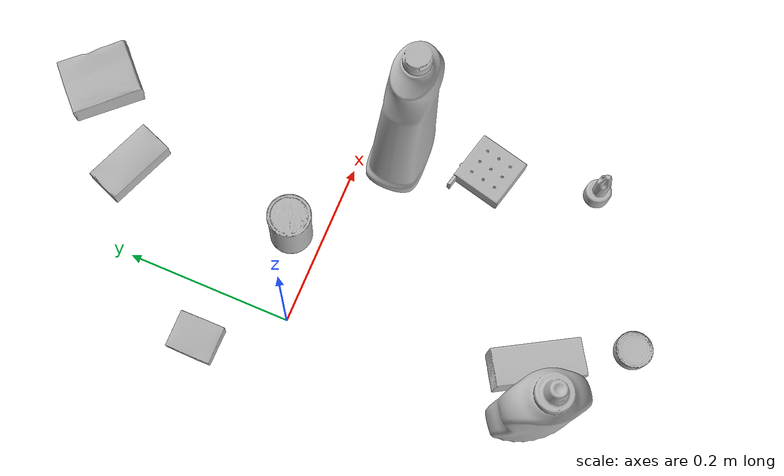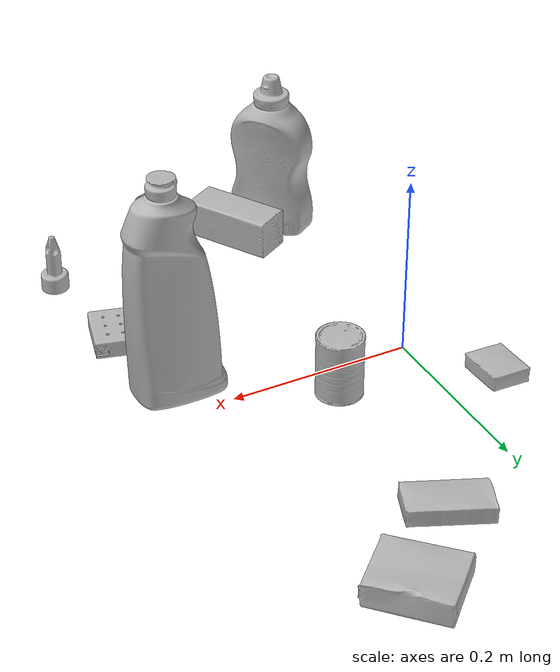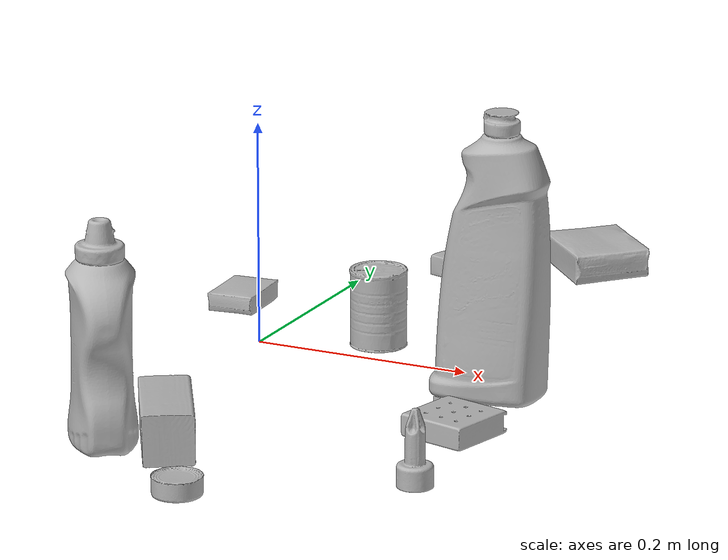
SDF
<sdf version="1.4">
  <world name="default">
    <light name="light1" type="point">
      <pose>0 0 1 0 0 0</pose>
      <diffuse>3 3 3 1</diffuse>
      <specular>3 3 3 1</specular>
    </light>
    <light name="light2" type="point">
      <pose>0 0.5 2 0 0 0</pose>
      <diffuse>1 1 1 1</diffuse>
      <specular>1 1 1 1</specular>
    </light>
    <light name="light3" type="point">
      <pose>0 0.5 2 0 0 0</pose>
      <diffuse>3 3 3 1</diffuse>
      <specular>3 3 3 1</specular>
    </light>
    <scene>
      <ambient>0.7 0.7 0.7</ambient>
    </scene>
    <model name="bottle1">
      <link name="link_bottle1">
        <collision name="default">
          <geometry>
            <mesh>
              <uri>model://mustard_bottle/collision_meshes/collision.obj</uri>
              <scale>1.0 1.0 1.0</scale>
            </mesh>
          </geometry>
          <surface>
            <friction>
              <ode>
                <mu>0.5</mu>
                <mu2>0.5</mu2>
              </ode>
            </friction>
          <contact>
        <ode>
            <max_vel>0</max_vel>
            <min_depth>0.0001</min_depth>
            <kp>1e8</kp>
        </ode>
    </contact></surface>
        </collision>
        <visual name="default">
          <geometry>
            <mesh>
              <uri>model://mustard_bottle/visual_meshes/visual.dae</uri>
              <scale>1.0 1.0 1.0</scale>
            </mesh>
          </geometry>
        </visual>
        <inertial>
          <mass>0.9814921021461487</mass>
          <pose>0.000503245391882956 -0.00015647400869056582 -0.0174757968634367 0.00041823298570721707 0.000946579165099878 0.024853733541460008</pose>
          <inertia>
            <ixx>0.0027254699</ixx>
            <iyy>0.0023913688</iyy>
            <izz>0.0007182988</izz>
            <ixy>0</ixy>
            <ixz>0</ixz>
            <iyz>0</iyz>
          </inertia>
        </inertial>
      </link>
      <pose>0.0052968286909163 -0.2936975359916687 0.09615200012922287 1.5251529174242992e-05 1.6738384253214413e-05 0.5952485585294877</pose>
    </model>
    <model name="bottle2">
      <link name="link_bottle2">
        <collision name="default">
          <geometry>
            <mesh>
              <uri>model://bleach_cleanser/collision_meshes/collision.obj</uri>
              <scale>1.0 1.0 1.0</scale>
            </mesh>
          </geometry>
          <surface>
            <friction>
              <ode>
                <mu>0.5</mu>
                <mu2>0.5</mu2>
              </ode>
            </friction>
          <contact>
        <ode>
            <max_vel>0</max_vel>
            <min_depth>0.0001</min_depth>
            <kp>1e8</kp>
        </ode>
    </contact></surface>
        </collision>
        <visual name="default">
          <geometry>
            <mesh>
              <uri>model://bleach_cleanser/visual_meshes/visual.dae</uri>
              <scale>1.0 1.0 1.0</scale>
            </mesh>
          </geometry>
        </visual>
        <inertial>
          <mass>0.5613878965377808</mass>
          <pose>0.00012193182919872925 0.0037838828284293413 -0.02442161738872528 -0.07381670616369514 0.00042011545192634117 -0.006875071107578698</pose>
          <inertia>
            <ixx>0.0027323565</ixx>
            <iyy>0.002546156</iyy>
            <izz>0.0004671619</izz>
            <ixy>0</ixy>
            <ixz>0</ixz>
            <iyz>0</iyz>
          </inertia>
        </inertial>
      </link>
      <pose>0.2439068853855133 -0.04369647055864334 0.12578414380550385 -0.00020082061099740352 1.5428113144367524e-05 -1.5514272781169463</pose>
    </model>
    <model name="toy1">
      <link name="link_toy1">
        <collision name="default">
          <geometry>
            <mesh>
              <uri>model://nine_hole_peg_test/collision_meshes/collision.obj</uri>
              <scale>0.5 0.5 0.5</scale>
            </mesh>
          </geometry>
          <surface>
            <friction>
              <ode>
                <mu>0.5</mu>
                <mu2>0.5</mu2>
              </ode>
            </friction>
          <contact>
        <ode>
            <max_vel>0</max_vel>
            <min_depth>0.0001</min_depth>
            <kp>1e8</kp>
        </ode>
    </contact></surface>
        </collision>
        <visual name="default">
          <geometry>
            <mesh>
              <uri>model://nine_hole_peg_test/visual_meshes/visual.dae</uri>
              <scale>0.5 0.5 0.5</scale>
            </mesh>
          </geometry>
        </visual>
        <inertial>
          <mass>0.10001979023218155</mass>
          <pose>-0.002308693015947938 -0.0048238071613013744 1.323034393863054e-05 -0.001466679064329537 0.000719417562538249 -0.6342417933325166</pose>
          <inertia>
            <ixx>3.9099352e-05</ixx>
            <iyy>3.650665e-05</iyy>
            <izz>6.851359e-05</izz>
            <ixy>0</ixy>
            <ixz>0</ixz>
            <iyz>0</iyz>
          </inertia>
        </inertial>
      </link>
      <pose>0.2550884187221527 -0.14740608632564545 0.010385502129793167 -9.643668746520569e-09 8.410026278192959e-09 1.3251140659425273</pose>
    </model>
    <model name="toy2">
      <link name="link_toy2">
        <collision name="default">
          <geometry>
            <mesh>
              <uri>model://d_toy_airplane/collision_meshes/collision.obj</uri>
              <scale>1.0 1.0 1.0</scale>
            </mesh>
          </geometry>
          <surface>
            <friction>
              <ode>
                <mu>0.5</mu>
                <mu2>0.5</mu2>
              </ode>
            </friction>
          <contact>
        <ode>
            <max_vel>0</max_vel>
            <min_depth>0.0001</min_depth>
            <kp>1e8</kp>
        </ode>
    </contact></surface>
        </collision>
        <visual name="default">
          <geometry>
            <mesh>
              <uri>model://d_toy_airplane/visual_meshes/visual.dae</uri>
              <scale>1.0 1.0 1.0</scale>
            </mesh>
          </geometry>
        </visual>
        <inertial>
          <mass>0.019254321232438087</mass>
          <pose>9.410314669366926e-05 -5.809308640891686e-05 -0.011728096753358841 0.0002669110283705203 0.00467899073598619 0.5194519611142697</pose>
          <inertia>
            <ixx>5.7720713e-06</ixx>
            <iyy>5.776424e-06</iyy>
            <izz>1.7426261e-06</izz>
            <ixy>0</ixy>
            <ixz>0</ixz>
            <iyz>0</iyz>
          </inertia>
        </inertial>
      </link>
      <pose>0.28449445962905884 -0.27916520833969116 0.0333387665450573 -3.78234170519251e-05 -0.00017904654171055072 1.5779993742951341</pose>
    </model>
    <model name="can1">
      <link name="link_can1">
        <collision name="default">
          <geometry>
            <mesh>
              <uri>model://master_chef_can/collision_meshes/collision.obj</uri>
              <scale>0.5 0.5 0.5</scale>
            </mesh>
          </geometry>
          <surface>
            <friction>
              <ode>
                <mu>0.5</mu>
                <mu2>0.5</mu2>
              </ode>
            </friction>
          <contact>
        <ode>
            <max_vel>0</max_vel>
            <min_depth>0.0001</min_depth>
            <kp>1e8</kp>
        </ode>
    </contact></surface>
        </collision>
        <visual name="default">
          <geometry>
            <mesh>
              <uri>model://master_chef_can/visual_meshes/visual.dae</uri>
              <scale>0.5 0.5 0.5</scale>
            </mesh>
          </geometry>
        </visual>
        <inertial>
          <mass>0.11909646540880203</mass>
          <pose>-4.661963976104744e-05 1.3926845099376806e-07 -5.07990553160198e-05 -0.0017995128948922 0.0006479239957886283 -0.6102624789319168</pose>
          <inertia>
            <ixx>6.990155e-05</ixx>
            <iyy>6.938709e-05</iyy>
            <izz>3.8625953e-05</izz>
            <ixy>0</ixy>
            <ixz>0</ixz>
            <iyz>0</iyz>
          </inertia>
        </inertial>
      </link>
      <pose>0.09868481755256653 0.03788606449961662 0.03530200943350792 -1.5233061763305364e-06 -9.737053913576356e-07 -2.1679037739972857</pose>
    </model>
    <model name="can2">
      <link name="link_can2">
        <collision name="default">
          <geometry>
            <mesh>
              <uri>model://tuna_fish_can/collision_meshes/collision.obj</uri>
              <scale>0.5 0.5 0.5</scale>
            </mesh>
          </geometry>
          <surface>
            <friction>
              <ode>
                <mu>0.5</mu>
                <mu2>0.5</mu2>
              </ode>
            </friction>
          <contact>
        <ode>
            <max_vel>0</max_vel>
            <min_depth>0.0001</min_depth>
            <kp>1e8</kp>
        </ode>
    </contact></surface>
        </collision>
        <visual name="default">
          <geometry>
            <mesh>
              <uri>model://tuna_fish_can/visual_meshes/visual.dae</uri>
              <scale>0.5 0.5 0.5</scale>
            </mesh>
          </geometry>
        </visual>
        <inertial>
          <mass>0.019333453848958015</mass>
          <pose>-2.0361452698125504e-05 -7.256490789586678e-06 -0.0005269024986773729 -0.0017944786606280685 0.0001716327651594619 0.24054823336333434</pose>
          <inertia>
            <ixx>2.6139116e-06</ixx>
            <iyy>2.6030175e-06</iyy>
            <izz>4.4727767e-06</izz>
            <ixy>0</ixy>
            <ixz>0</ixz>
            <iyz>0</iyz>
          </inertia>
        </inertial>
      </link>
      <pose>0.12092902511358261 -0.3783569931983948 0.008520000614225864 6.064630446170636e-08 1.3500165832284993e-08 -2.35674967110163</pose>
    </model>
    <model name="box1">
      <link name="link_box1">
        <collision name="default">
          <geometry>
            <mesh>
              <uri>model://sugar_box/collision_meshes/collision.obj</uri>
              <scale>0.5 0.5 0.5</scale>
            </mesh>
          </geometry>
          <surface>
            <friction>
              <ode>
                <mu>0.5</mu>
                <mu2>0.5</mu2>
              </ode>
            </friction>
          <contact>
        <ode>
            <max_vel>0</max_vel>
            <min_depth>0.0001</min_depth>
            <kp>1e8</kp>
        </ode>
    </contact></surface>
        </collision>
        <visual name="default">
          <geometry>
            <mesh>
              <uri>model://sugar_box/visual_meshes/visual.dae</uri>
              <scale>0.5 0.5 0.5</scale>
            </mesh>
          </geometry>
        </visual>
        <inertial>
          <mass>0.11277332901954651</mass>
          <pose>0.0005171863595023751 1.924554817378521e-05 -0.0001818240125430748 -0.00040462603870476286 0.0010506635217257978 0.002615378323397263</pose>
          <inertia>
            <ixx>2.34906e-05</ixx>
            <iyy>7.592646e-05</iyy>
            <izz>9.089305e-05</izz>
            <ixy>0</ixy>
            <ixz>0</ixz>
            <iyz>0</iyz>
          </inertia>
        </inertial>
      </link>
      <pose>0.1004660502076149 0.24951493740081787 0.011399302631616592 0.0007757174096768798 -0.023432765902893202 -0.3818159279535239</pose>
    </model>
    <model name="box2">
      <link name="link_box2">
        <collision name="default">
          <geometry>
            <mesh>
              <uri>model://gelatin_box/collision_meshes/collision.obj</uri>
              <scale>1.0 1.0 1.0</scale>
            </mesh>
          </geometry>
          <surface>
            <friction>
              <ode>
                <mu>0.5</mu>
                <mu2>0.5</mu2>
              </ode>
            </friction>
          <contact>
        <ode>
            <max_vel>0</max_vel>
            <min_depth>0.0001</min_depth>
            <kp>1e8</kp>
        </ode>
    </contact></surface>
        </collision>
        <visual name="default">
          <geometry>
            <mesh>
              <uri>model://gelatin_box/visual_meshes/visual.dae</uri>
              <scale>1.0 1.0 1.0</scale>
            </mesh>
          </geometry>
        </visual>
        <inertial>
          <mass>0.18825438618659973</mass>
          <pose>0.0004319618456065655 0.00011156871914863586 -0.0003640321083366871 -0.0010503720853528096 -0.004755817758068365 0.016440559471334753</pose>
          <inertia>
            <ixx>0.00013289225</ixx>
            <iyy>9.492423e-05</iyy>
            <izz>0.0002022916</izz>
            <ixy>0</ixy>
            <ixz>0</ixz>
            <iyz>0</iyz>
          </inertia>
        </inertial>
      </link>
      <pose>0.1827661097049713 0.32933029532432556 0.015168316662311554 0.005597062513602899 -0.0073041003435519655 0.7594586300288786</pose>
    </model>
    <model name="box3">
      <link name="link_box3">
        <collision name="default">
          <geometry>
            <mesh>
              <uri>model://wood_block/collision_meshes/collision.obj</uri>
              <scale>0.5 0.5 0.5</scale>
            </mesh>
          </geometry>
          <surface>
            <friction>
              <ode>
                <mu>0.5</mu>
                <mu2>0.5</mu2>
              </ode>
            </friction>
          <contact>
        <ode>
            <max_vel>0</max_vel>
            <min_depth>0.0001</min_depth>
            <kp>1e8</kp>
        </ode>
    </contact></surface>
        </collision>
        <visual name="default">
          <geometry>
            <mesh>
              <uri>model://wood_block/visual_meshes/visual.dae</uri>
              <scale>0.5 0.5 0.5</scale>
            </mesh>
          </geometry>
        </visual>
        <inertial>
          <mass>0.16905224323272705</mass>
          <pose>-2.906657982748584e-06 -0.00028540476341731846 0.00013204291462898254 -0.05220975529285028 -0.0051926941753174345 -0.0068613788950967446</pose>
          <inertia>
            <ixx>5.655437e-05</ixx>
            <iyy>0.00017865526</iyy>
            <izz>0.00017798702</izz>
            <ixy>0</ixy>
            <ixz>0</ixz>
            <iyz>0</iyz>
          </inertia>
        </inertial>
      </link>
      <pose>0.058625977486371994 -0.2807255983352661 0.02262926660478115 -0.005208269097540778 0.005718798310741837 2.1009803919678216</pose>
    </model>
    <model name="box4">
      <link name="link_box4">
        <collision name="default">
          <geometry>
            <mesh>
              <uri>model://pudding_box/collision_meshes/collision.obj</uri>
              <scale>0.5 0.5 0.5</scale>
            </mesh>
          </geometry>
          <surface>
            <friction>
              <ode>
                <mu>0.5</mu>
                <mu2>0.5</mu2>
              </ode>
            </friction>
          <contact>
        <ode>
            <max_vel>0</max_vel>
            <min_depth>0.0001</min_depth>
            <kp>1e8</kp>
        </ode>
    </contact></surface>
        </collision>
        <visual name="default">
          <geometry>
            <mesh>
              <uri>model://pudding_box/visual_meshes/visual.dae</uri>
              <scale>0.5 0.5 0.5</scale>
            </mesh>
          </geometry>
        </visual>
        <inertial>
          <mass>0.04372405260801315</mass>
          <pose>0.00024474109522998333 0.00040339428232982755 -0.00025944135268218815 0.005213099923843092 -0.006603798704775496 0.02007982702870814</pose>
          <inertia>
            <ixx>1.2356946e-05</ixx>
            <iyy>8.313842e-06</iyy>
            <izz>1.8248264e-05</izz>
            <ixy>0</ixy>
            <ixz>0</ixz>
            <iyz>0</iyz>
          </inertia>
        </inertial>
      </link>
      <pose>-0.06123445928096771 0.08656422048807144 0.009862902574241161 0.022348492119165085 -0.011391737939935694 0.0032123963532124915</pose>
    </model>
  <physics type="ode">
      <max_contacts>50</max_contacts>
      <ode>
        <solver>
          <type>quick</type>
          <iters>75</iters>
        </solver>
        <constraints>
          <contact_max_correcting_vel>0</contact_max_correcting_vel>
          <contact_surface_layer>0</contact_surface_layer>
        </constraints>
      </ode>
    </physics></world>
</sdf>
